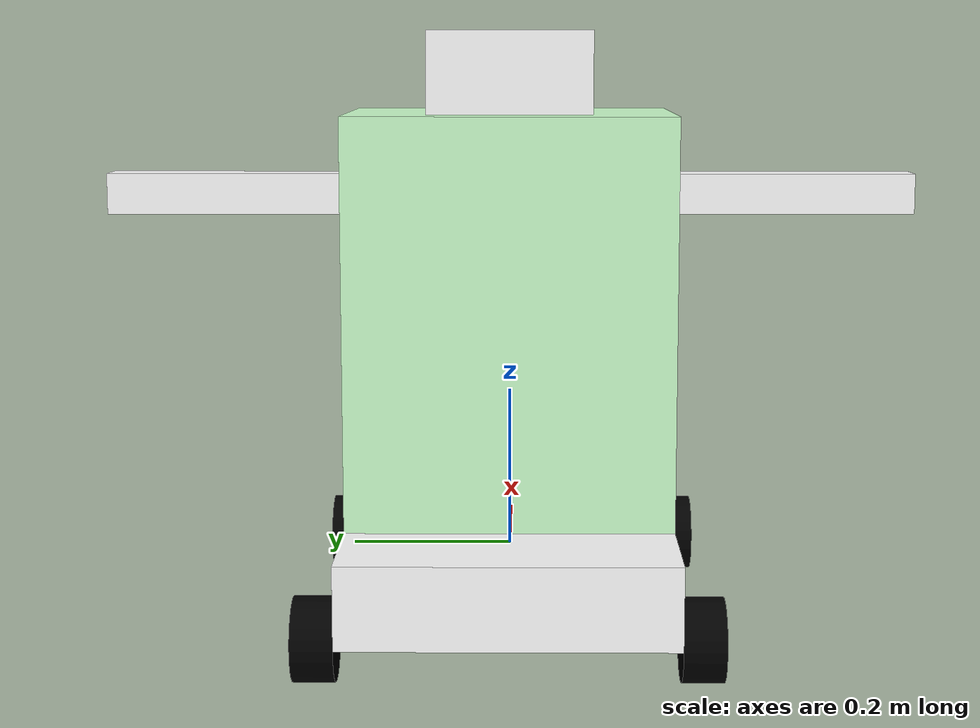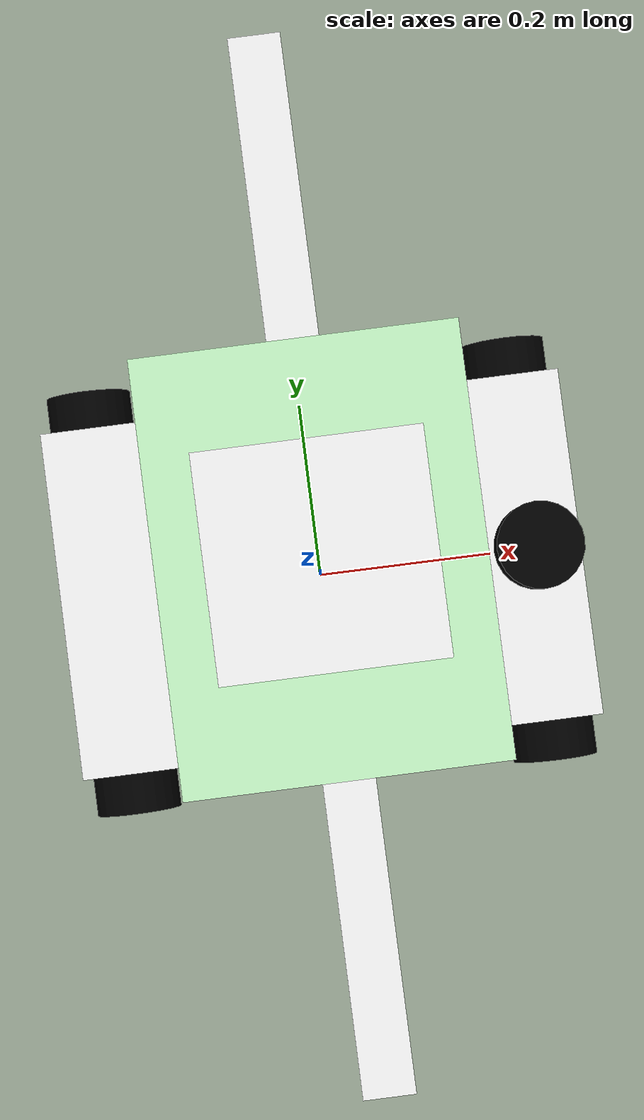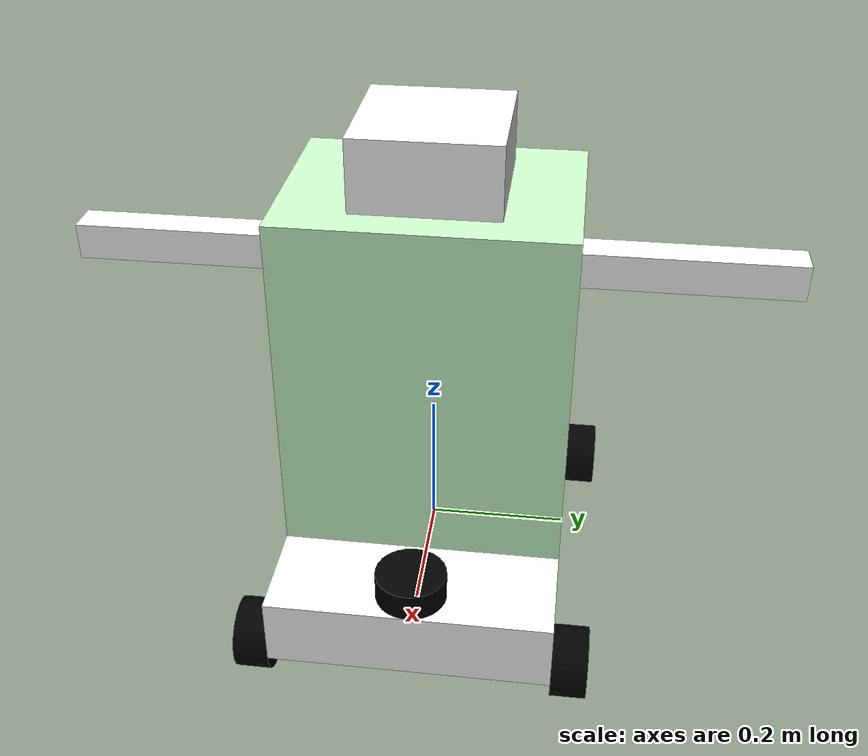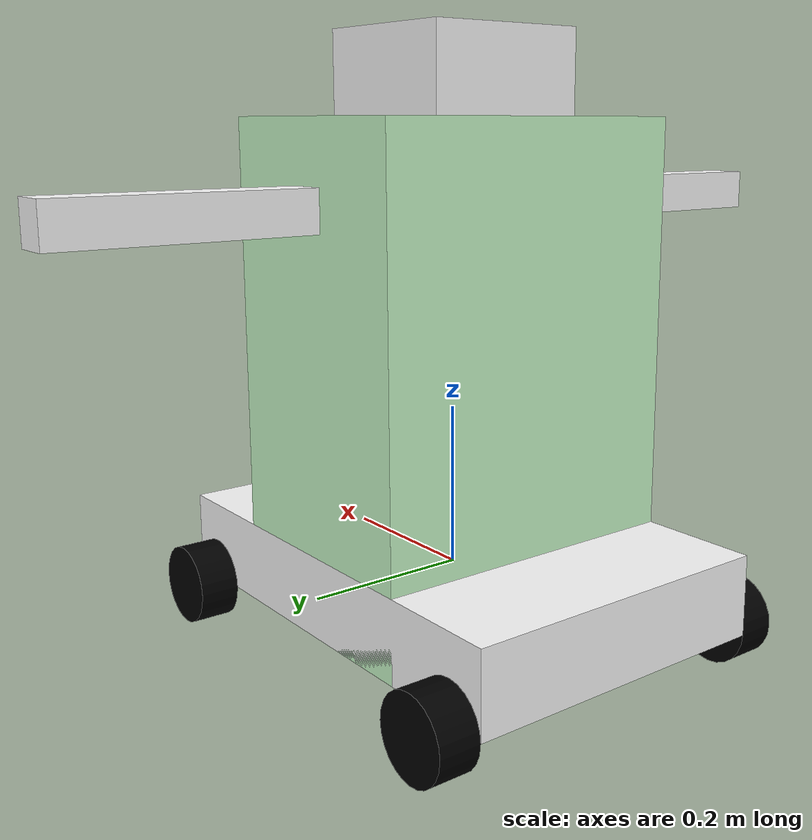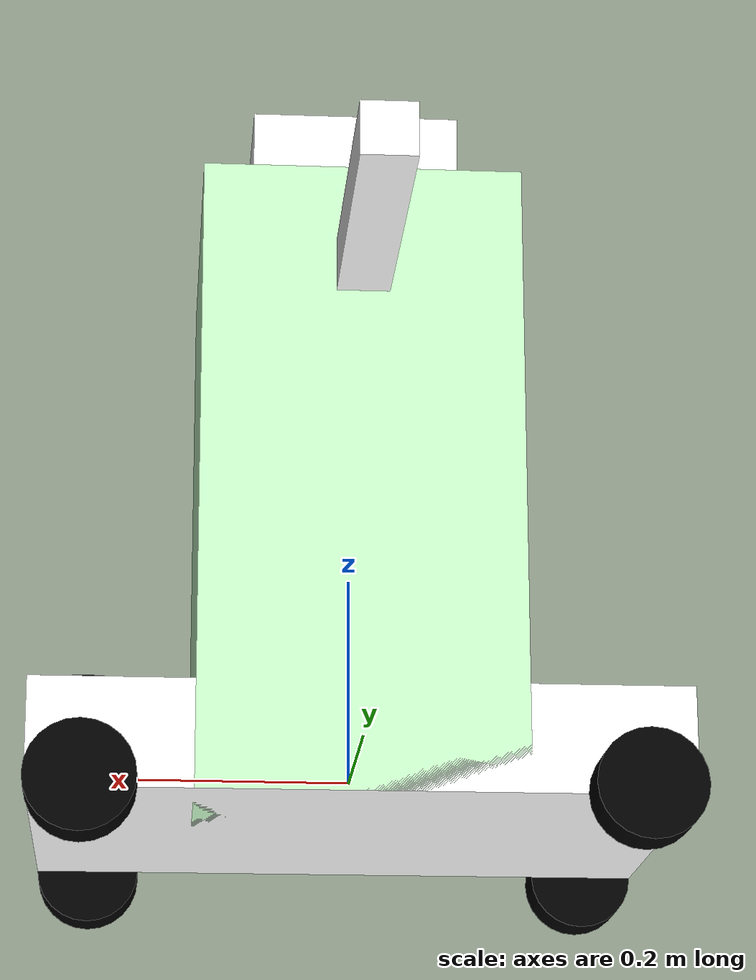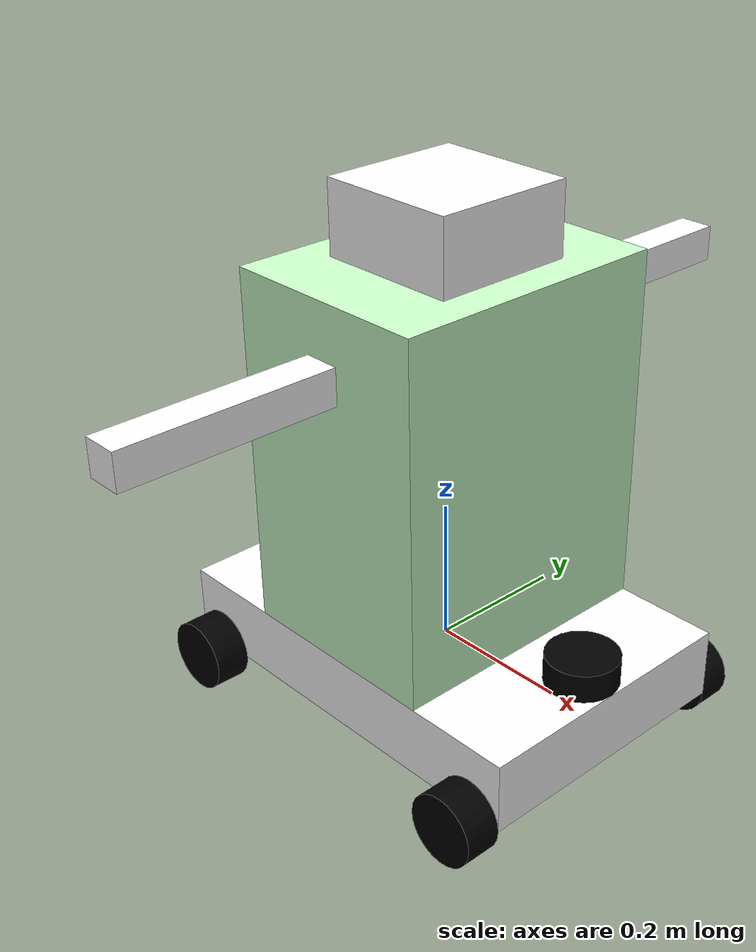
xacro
<?xml version="1.0"?>
<robot xmlns:xacro="http://www.ros.org/wiki/xacro" name="emma_bot">

  <xacro:include filename="inertial_macros.xacro" />

  <!-- Materials -->
  <material name="HospitalGreen">
    <color rgba="0.8 1.0 0.8 1.0"/>
  </material>
  <material name="Black">
    <color rgba="0 0 0 1"/>
  </material>
  <material name="White">
    <color rgba="1 1 1 1"/>
  </material>

  <link name="base_link">
    <visual>
      <origin xyz="0 0 0" rpy="0 0 0"/>
      <geometry>
        <box size="0.01 0.01 0.01"/>
      </geometry>
      <material name="Black"/>
    </visual>
    <collision>
      <origin xyz="0 0 0" rpy="0 0 0"/>
      <geometry>
        <box size="0.01 0.01 0.01"/>
      </geometry>
    </collision>
    <inertial>
      <mass value="0.001"/>
      <inertia ixx="0.00001" iyy="0.00001" izz="0.00001"
               ixy="0.0" ixz="0.0" iyz="0.0"/>
    </inertial>
  </link>

  <!-- CHASSIS LINK -->
  <joint name="chassis_joint" type="fixed">
    <parent link="base_link"/>
    <child link="chassis_link"/>
    <origin xyz="0 0 0"/>
  </joint>

  <link name="chassis_link">
    <visual>
      <origin xyz="0 0 0" rpy="0 0 0"/>
      <geometry>
        <box size="0.6 0.4 0.1"/>
      </geometry>
      <material name="White"/>
    </visual>
    <collision>
      <origin xyz="0 0 0" rpy="0 0 0"/>
      <geometry>
        <box size="0.6 0.4 0.1"/>
      </geometry>
    </collision>
    <inertial>
      <mass value="1.0"/>
      <inertia ixx="0.01" ixy="0.0" ixz="0.0" iyy="0.01" iyz="0.0" izz="0.01"/>
    </inertial>
  </link>
  <gazebo reference="chassis_link">
    <material>Gazebo/White</material>
  </gazebo>

  <!-- BODY LINK -->
  <joint name="chassis_to_body" type="fixed">
    <parent link="chassis_link"/>
    <child link="body_link"/>
    <origin xyz="0 0 0.25" rpy="0 0 0"/>
  </joint>

  <link name="body_link">
    <visual>
      <origin xyz="0 0 0" rpy="0 0 0"/>
      <geometry>
        <box size="0.3 0.4 0.6"/>
      </geometry>
      <material name="HospitalGreen"/>
    </visual>
    <collision>
      <origin xyz="0 0 0" rpy="0 0 0"/>
      <geometry>
        <box size="0.3 0.4 0.6"/>
      </geometry>
    </collision>
    <inertial>
      <mass value="1.0"/>
      <inertia ixx="0.02" ixy="0.0" ixz="0.0" iyy="0.02" iyz="0.0" izz="0.02"/>
    </inertial>
  </link>
  <gazebo reference="body_link">
    <material>Gazebo/Grey</material>
  </gazebo>

  <!-- HEAD LINK -->
  <joint name="body_to_head" type="fixed">
    <parent link="body_link"/>
    <child link="head_link"/>
    <origin xyz="0 0 0.3" rpy="0 0 0"/>
  </joint>

  <link name="head_link">
    <visual>
      <origin xyz="0 0 0" rpy="0 0 0"/>
      <geometry>
        <box size="0.2 0.2 0.2"/>
      </geometry>
      <material name="White"/>
    </visual>
    <collision>
      <origin xyz="0 0 0" rpy="0 0 0"/>
      <geometry>
        <box size="0.2 0.2 0.2"/>
      </geometry>
    </collision>
    <inertial>
      <mass value="0.5"/>
      <inertia ixx="0.005" ixy="0.0" ixz="0.0" iyy="0.005" iyz="0.0" izz="0.005"/>
    </inertial>
  </link>
  <gazebo reference="head_link">
    <material>Gazebo/White</material>
  </gazebo>

  <!-- LEFT ARM -->
  <joint name="body_to_left_arm" type="fixed">
    <parent link="body_link"/>
    <child link="left_arm_link"/>
    <origin xyz="0 0.35 0.20" rpy="0 0 0"/>
  </joint>

  <link name="left_arm_link">
    <visual>
      <origin xyz="0 0 0" rpy="0 0 0"/>
      <geometry>
        <box size="0.05 0.3 0.05"/>
      </geometry>
      <material name="White"/>
    </visual>
    <collision>
      <origin xyz="0 0 0" rpy="0 0 0"/>
      <geometry>
        <box size="0.05 0.2 0.05"/>
      </geometry>
    </collision>
    <inertial>
      <mass value="0.2"/>
      <inertia ixx="0.001" ixy="0.0" ixz="0.0" iyy="0.001" iyz="0.0" izz="0.001"/>
    </inertial>
  </link>
  <gazebo reference="left_arm_link">
    <material>Gazebo/White</material>
  </gazebo>

  <!-- RIGHT ARM -->
  <joint name="body_to_right_arm" type="fixed">
    <parent link="body_link"/>
    <child link="right_arm_link"/>
    <origin xyz="0 -0.35 0.20" rpy="0 0 0"/>
  </joint>

  <link name="right_arm_link">
    <visual>
      <origin xyz="0 0 0" rpy="0 0 0"/>
      <geometry>
        <box size="0.05 0.3 0.05"/>
      </geometry>
      <material name="White"/>
    </visual>
    <collision>
      <origin xyz="0 0 0" rpy="0 0 0"/>
      <geometry>
        <box size="0.05 0.2 0.05"/>
      </geometry>
    </collision>
    <inertial>
      <mass value="0.2"/>
      <inertia ixx="0.001" ixy="0" ixz="0" iyy="0.001" iyz="0" izz="0.001"/>
    </inertial>
  </link>
  <gazebo reference="right_arm_link">
    <material>Gazebo/White</material>
  </gazebo>

  <!-- WHEELS -->
  <!-- Front Left Wheel -->
  <joint name="fl_wheel_joint" type="continuous">
    <parent link="base_link"/>
    <child link="front_left_wheel_link"/>
    <origin xyz="0.25 0.225 -0.05" rpy="0 0 0"/>
    <axis xyz="0 1 0"/>
  </joint>
  <link name="front_left_wheel_link">
    <visual>
      <origin xyz="0 0 0" rpy="0 -1.5708 1.5708"/>
      <geometry>
        <cylinder radius="0.05" length="0.05"/>
      </geometry>
      <material name="Black"/>
    </visual>
    <collision>
      <origin xyz="0 0 0" rpy="0 -1.5708 1.5708"/>
      <geometry>
        <cylinder radius="0.05" length="0.05"/>
      </geometry>
    </collision>
    <inertial>
      <mass value="0.3"/>
      <inertia ixx="0.001" ixy="0" ixz="0" iyy="0.001" iyz="0" izz="0.001"/>
    </inertial>
  </link>
  <gazebo reference="front_left_wheel_link">
    <material>Gazebo/Black</material>
  </gazebo>

  <!-- Front Right Wheel -->
  <joint name="fr_wheel_joint" type="continuous">
    <parent link="base_link"/>
    <child link="front_right_wheel_link"/>
    <origin xyz="0.25 -0.225 -0.05" rpy="0 0 0"/>
    <axis xyz="0 1 0"/>
  </joint>
  <link name="front_right_wheel_link">
    <visual>
      <origin xyz="0 0 0" rpy="0 -1.5708 1.5708"/>
      <geometry>
        <cylinder radius="0.05" length="0.05"/>
      </geometry>
      <material name="Black"/>
    </visual>
    <collision>
      <origin xyz="0 0 0" rpy="0 -1.5708 1.5708"/>
      <geometry>
        <cylinder radius="0.05" length="0.05"/>
      </geometry>
    </collision>
    <inertial>
      <mass value="0.3"/>
      <inertia ixx="0.001" ixy="0" ixz="0" iyy="0.001" iyz="0" izz="0.001"/>
    </inertial>
  </link>
  <gazebo reference="front_right_wheel_link">
    <material>Gazebo/Black</material>
  </gazebo>

  <!-- Rear Left Wheel -->
  <joint name="bl_wheel_joint" type="continuous">
    <parent link="base_link"/>
    <child link="rear_left_wheel_link"/>
    <origin xyz="-0.25 0.225 -0.05" rpy="0 0 0"/>
    <axis xyz="0 1 0"/>
  </joint>
  <link name="rear_left_wheel_link">
    <visual>
      <origin xyz="0 0 0" rpy="0 -1.5708 1.5708"/>
      <geometry>
        <cylinder radius="0.05" length="0.05"/>
      </geometry>
      <material name="Black"/>
    </visual>
    <collision>
      <origin xyz="0 0 0" rpy="0 -1.5708 1.5708"/>
      <geometry>
        <cylinder radius="0.05" length="0.05"/>
      </geometry>
    </collision>
    <inertial>
      <mass value="0.3"/>
      <inertia ixx="0.001" ixy="0" ixz="0" iyy="0.001" iyz="0" izz="0.001"/>
    </inertial>
  </link>
  <gazebo reference="rear_left_wheel_link">
    <material>Gazebo/Black</material>
  </gazebo>

  <!-- Rear Right Wheel -->
  <joint name="br_wheel_joint" type="continuous">
    <parent link="base_link"/>
    <child link="rear_right_wheel_link"/>
    <origin xyz="-0.25 -0.225 -0.05" rpy="0 0 0"/>
    <axis xyz="0 1 0"/>
  </joint>
  <link name="rear_right_wheel_link">
    <visual>
      <origin xyz="0 0 0" rpy="0 -1.5708 1.5708"/>
      <geometry>
        <cylinder radius="0.05" length="0.05"/>
      </geometry>
      <material name="Black"/>
    </visual>
    <collision>
      <origin xyz="0 0 0" rpy="0 -1.5708 1.5708"/>
      <geometry>
        <cylinder radius="0.05" length="0.05"/>
      </geometry>
    </collision>
    <inertial>
      <mass value="0.3"/>
      <inertia ixx="0.001" ixy="0" ixz="0" iyy="0.001" iyz="0" izz="0.001"/>
    </inertial>
  </link>
  <gazebo reference="rear_right_wheel_link">
    <material>Gazebo/Black</material>
  </gazebo>

  <!-- LIDAR -->
  <joint name="laser_joint" type="fixed">
    <parent link="base_link"/>
    <child link="laser_frame"/>
    <origin xyz="0.25 0 0.07" rpy="0 0 0"/>
  </joint>
  <link name="laser_frame">
    <visual>
      <origin xyz="0 0 0" rpy="0 0 0"/>
      <geometry>
        <cylinder radius="0.05" length="0.04"/>
      </geometry>
      <material name="Black"/>
    </visual>
    <visual>
      <origin xyz="0 0 -0.05" rpy="0 0 0"/>
      <geometry>
        <cylinder radius="0.01" length="0.1"/>
      </geometry>
      <material name="Black"/>
    </visual>
    <collision>
      <origin xyz="0 0 0" rpy="0 0 0"/>
      <geometry>
        <cylinder radius="0.05" length="0.04"/>
      </geometry>
    </collision>
    <xacro:inertial_cylinder mass="0.1" length="0.04" radius="0.05">
      <origin xyz="0 0 0" rpy="0 0 0"/>
    </xacro:inertial_cylinder>
  </link>
  <gazebo reference="laser_frame">
    <material>Gazebo/Black</material>
    <sensor name="laser" type="ray">
      <pose>0 0 0 0 0 0</pose>
      <visualize>true</visualize>
      <update_rate>10</update_rate>
      <ray>
        <scan>
          <horizontal>
            <samples>360</samples>
            <min_angle>-3.14</min_angle>
            <max_angle>3.14</max_angle>
          </horizontal>
        </scan>
        <range>
          <min>0.3</min>
          <max>12</max>
        </range>
      </ray>
      <plugin name="laser_controller" filename="libgazebo_ros_ray_sensor.so">
        <ros>
          <namespace>/</namespace>
          <remapping>scan:=scan</remapping>
          <topicName>scan</topicName>
        </ros>
        <output_type>sensor_msgs/LaserScan</output_type>
        <frame_name>laser_frame</frame_name>
        <updateRate>10</updateRate>
      </plugin>
    </sensor>
  </gazebo>

    <gazebo>
      <plugin name="diff_drive" filename="libgazebo_ros_diff_drive.so">

        <!-- Number of wheel pairs -->
        <num_wheel_pairs>2</num_wheel_pairs>

        <!-- wheels: specify as comma-separated lists -->
        <left_joint>fl_wheel_joint</left_joint>
  <left_joint>bl_wheel_joint</left_joint>
  <right_joint>fr_wheel_joint</right_joint>
  <right_joint>br_wheel_joint</right_joint>

        <!-- kinematics -->
        <wheel_separation>0.7</wheel_separation>
        <wheel_diameter>0.3</wheel_diameter>

        <!-- limits -->
        <max_wheel_torque>20</max_wheel_torque>
        <max_wheel_acceleration>1.0</max_wheel_acceleration>

        <!-- output -->
        <publish_odom>true</publish_odom>
        <publish_odom_tf>true</publish_odom_tf>
        <publish_wheel_tf>true</publish_wheel_tf>

        <odometry_frame>odom</odometry_frame>
        <robot_base_frame>base_link</robot_base_frame>
      </plugin>
    </gazebo>

  </robot>
